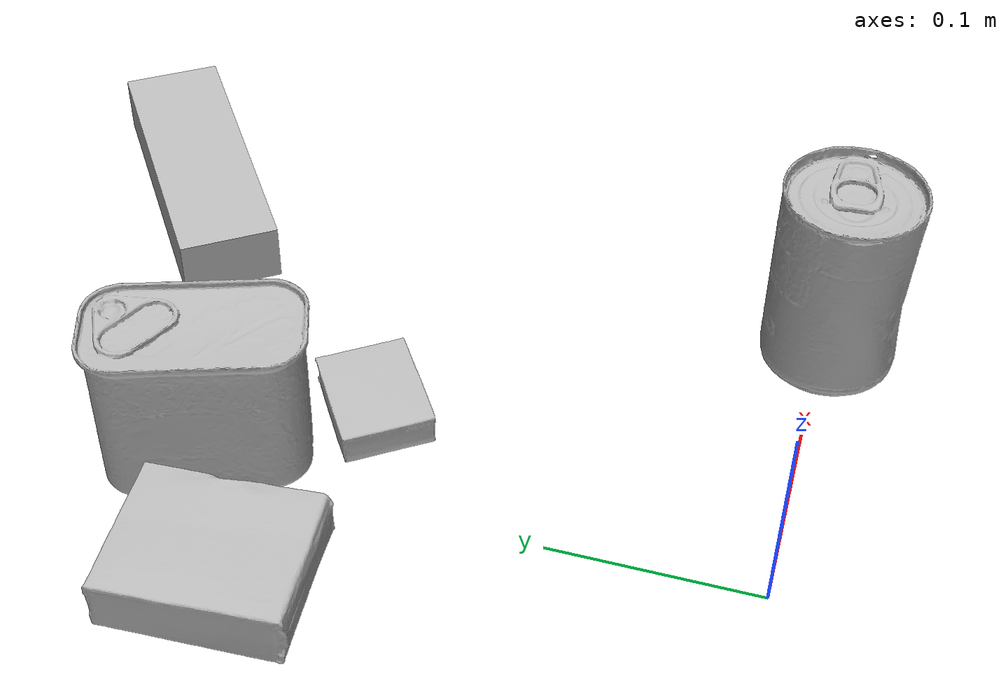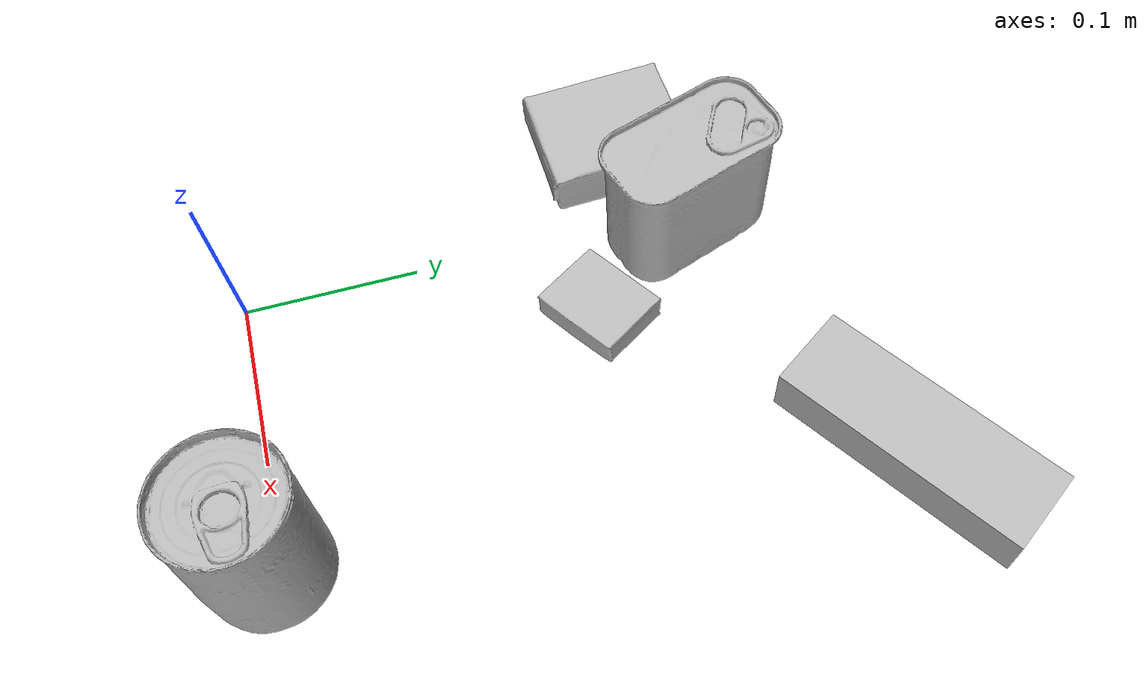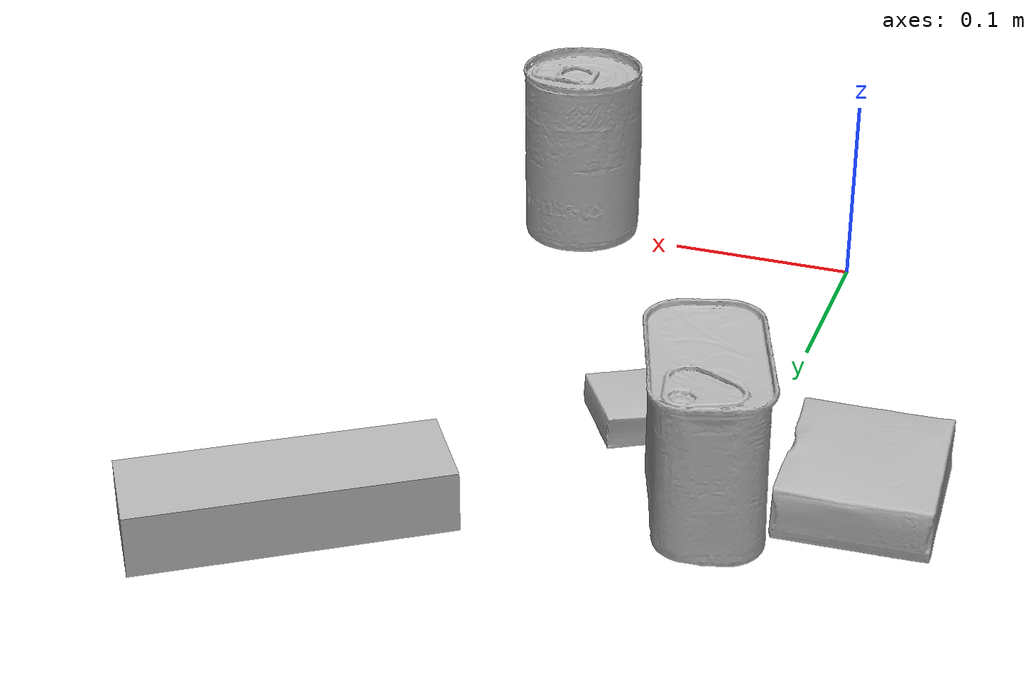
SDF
<sdf version="1.4">
  <world name="default">
    <light name="light1" type="point">
      <pose>0 0 1 0 0 0</pose>
      <diffuse>3 3 3 1</diffuse>
      <specular>3 3 3 1</specular>
    </light>
    <light name="light2" type="point">
      <pose>0 0.5 2 0 0 0</pose>
      <diffuse>1 1 1 1</diffuse>
      <specular>1 1 1 1</specular>
    </light>
    <light name="light3" type="point">
      <pose>0 0.5 2 0 0 0</pose>
      <diffuse>3 3 3 1</diffuse>
      <specular>3 3 3 1</specular>
    </light>
    <scene>
      <ambient>0.7 0.7 0.7</ambient>
    </scene>
    <model name="box1">
      <link name="link_box1">
        <collision name="default">
          <geometry>
            <mesh>
              <uri>model://pudding_box/collision_meshes/collision.obj</uri>
              <scale>0.5 0.5 0.5</scale>
            </mesh>
          </geometry>
          <surface>
            <friction>
              <ode>
                <mu>0.5</mu>
                <mu2>0.5</mu2>
              </ode>
            </friction>
          <contact>
        <ode>
            <max_vel>0</max_vel>
            <min_depth>0.0001</min_depth>
            <kp>1e8</kp>
        </ode>
    </contact></surface>
        </collision>
        <visual name="default">
          <geometry>
            <mesh>
              <uri>model://pudding_box/visual_meshes/visual.dae</uri>
              <scale>0.5 0.5 0.5</scale>
            </mesh>
          </geometry>
        </visual>
        <inertial>
          <mass>0.040720973163843155</mass>
          <pose>0.00024474109522998333 0.0004033942532259971 -0.0002594413817860186 0.005213101818388509 -0.006603799159636292 0.020079815843731863</pose>
          <inertia>
            <ixx>1.1508242e-05</ixx>
            <iyy>7.742825e-06</iyy>
            <izz>1.6994923e-05</izz>
            <ixy>0</ixy>
            <ixz>0</ixz>
            <iyz>0</iyz>
          </inertia>
        </inertial>
      </link>
      <pose>0.05682512745261192 0.19711194932460785 0.009862899780273438 0.022348469994474093 -0.011391761434969457 -0.9926385628930181</pose>
    </model>
    <model name="box2">
      <link name="link_box2">
        <collision name="default">
          <geometry>
            <mesh>
              <uri>model://jenga/collision_meshes/collision.obj</uri>
              <scale>1.0 1.0 1.0</scale>
            </mesh>
          </geometry>
          <surface>
            <friction>
              <ode>
                <mu>0.5</mu>
                <mu2>0.5</mu2>
              </ode>
            </friction>
          <contact>
        <ode>
            <max_vel>0</max_vel>
            <min_depth>0.0001</min_depth>
            <kp>1e8</kp>
        </ode>
    </contact></surface>
        </collision>
        <visual name="default">
          <geometry>
            <mesh>
              <uri>model://jenga/visual_meshes/visual.dae</uri>
              <scale>1.0 1.0 1.0</scale>
            </mesh>
          </geometry>
        </visual>
        <inertial>
          <mass>0.2260044664144516</mass>
          <pose>-2.502855807051674e-07 -0.00010250010382151231 -4.0923401684267446e-05 0.0 -7.34215461761844e-07 0.0</pose>
          <inertia>
            <ixx>6.254092e-05</ixx>
            <iyy>0.00042377558</iyy>
            <izz>0.00045241645</izz>
            <ixy>0</ixy>
            <ixz>0</ixz>
            <iyz>0</iyz>
          </inertia>
        </inertial>
      </link>
      <pose>0.1860402673482895 0.33819159865379333 0.014999998733401299 1.0138955132637752e-08 -8.788029475015518e-10 0.5966364671208129</pose>
    </model>
    <model name="box3">
      <link name="link_box3">
        <collision name="default">
          <geometry>
            <mesh>
              <uri>model://gelatin_box/collision_meshes/collision.obj</uri>
              <scale>1.0 1.0 1.0</scale>
            </mesh>
          </geometry>
          <surface>
            <friction>
              <ode>
                <mu>0.5</mu>
                <mu2>0.5</mu2>
              </ode>
            </friction>
          <contact>
        <ode>
            <max_vel>0</max_vel>
            <min_depth>0.0001</min_depth>
            <kp>1e8</kp>
        </ode>
    </contact></surface>
        </collision>
        <visual name="default">
          <geometry>
            <mesh>
              <uri>model://gelatin_box/visual_meshes/visual.dae</uri>
              <scale>1.0 1.0 1.0</scale>
            </mesh>
          </geometry>
        </visual>
        <inertial>
          <mass>0.21249663829803467</mass>
          <pose>0.000431961816502735 0.00011156871914863586 -0.0003640321083366871 -0.0010503720865678746 -0.004755816824885886 0.016440563196489677</pose>
          <inertia>
            <ixx>0.00015000527</ixx>
            <iyy>0.000107147986</iyy>
            <izz>0.00022834145</izz>
            <ixy>0</ixy>
            <ixz>0</ixz>
            <iyz>0</iyz>
          </inertia>
        </inertial>
      </link>
      <pose>-0.05771479383111 0.23260079324245453 0.015168316662311554 0.005597414818697654 -0.007304489028174312 0.044557892812762755</pose>
    </model>
    <model name="can1">
      <link name="link_can1">
        <collision name="default">
          <geometry>
            <mesh>
              <uri>model://tomato_soup_can/collision_meshes/collision.obj</uri>
              <scale>1.0 1.0 1.0</scale>
            </mesh>
          </geometry>
          <surface>
            <friction>
              <ode>
                <mu>0.5</mu>
                <mu2>0.5</mu2>
              </ode>
            </friction>
          <contact>
        <ode>
            <max_vel>0</max_vel>
            <min_depth>0.0001</min_depth>
            <kp>1e8</kp>
        </ode>
    </contact></surface>
        </collision>
        <visual name="default">
          <geometry>
            <mesh>
              <uri>model://tomato_soup_can/visual_meshes/visual.dae</uri>
              <scale>1.0 1.0 1.0</scale>
            </mesh>
          </geometry>
        </visual>
        <inertial>
          <mass>0.23179346323013306</mass>
          <pose>0.00012652273289859295 0.00010805525380419567 -0.0017973976209759712 0.00702006934742656 0.00042299045868732465 -0.009902874376192201</pose>
          <inertia>
            <ixx>0.0002541419</ixx>
            <iyy>0.00025267305</iyy>
            <izz>0.00013171937</izz>
            <ixy>0</ixy>
            <ixz>0</ixz>
            <iyz>0</iyz>
          </inertia>
        </inertial>
      </link>
      <pose>0.16023887693881989 -0.0033897857647389174 0.05127400532364845 -4.682563977803987e-07 -7.859899965194425e-07 1.3617390045083493</pose>
    </model>
    <model name="can2">
      <link name="link_can2">
        <collision name="default">
          <geometry>
            <mesh>
              <uri>model://potted_meat_can/collision_meshes/collision.obj</uri>
              <scale>1.0 1.0 1.0</scale>
            </mesh>
          </geometry>
          <surface>
            <friction>
              <ode>
                <mu>0.5</mu>
                <mu2>0.5</mu2>
              </ode>
            </friction>
          <contact>
        <ode>
            <max_vel>0</max_vel>
            <min_depth>0.0001</min_depth>
            <kp>1e8</kp>
        </ode>
    </contact></surface>
        </collision>
        <visual name="default">
          <geometry>
            <mesh>
              <uri>model://potted_meat_can/visual_meshes/visual.dae</uri>
              <scale>1.0 1.0 1.0</scale>
            </mesh>
          </geometry>
        </visual>
        <inertial>
          <mass>0.3195023536682129</mass>
          <pose>0.00022888148669153452 -5.98910846747458e-05 -0.0006367437308654189 -0.028093352727545092 -0.0072326048209280834 0.015406269022640915</pose>
          <inertia>
            <ixx>0.00041100648</ixx>
            <iyy>0.0002497176</iyy>
            <izz>0.00029892896</izz>
            <ixy>0</ixy>
            <ixz>0</ixz>
            <iyz>0</iyz>
          </inertia>
        </inertial>
      </link>
      <pose>0.011154340580105782 0.2630990445613861 0.042128004133701324 -7.836498851499754e-08 -5.401690717577602e-07 -2.821672445587416</pose>
    </model>
  <physics type="ode">
      <max_contacts>50</max_contacts>
      <ode>
        <solver>
          <type>quick</type>
          <iters>75</iters>
        </solver>
        <constraints>
          <contact_max_correcting_vel>0</contact_max_correcting_vel>
          <contact_surface_layer>0</contact_surface_layer>
        </constraints>
      </ode>
    </physics></world>
</sdf>
